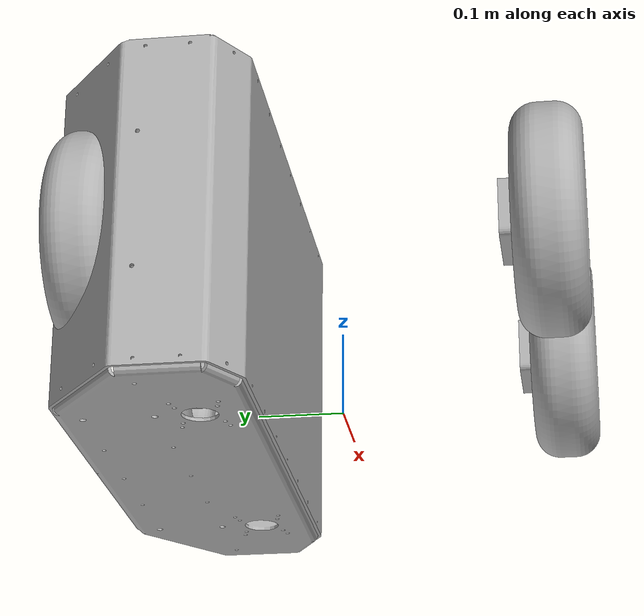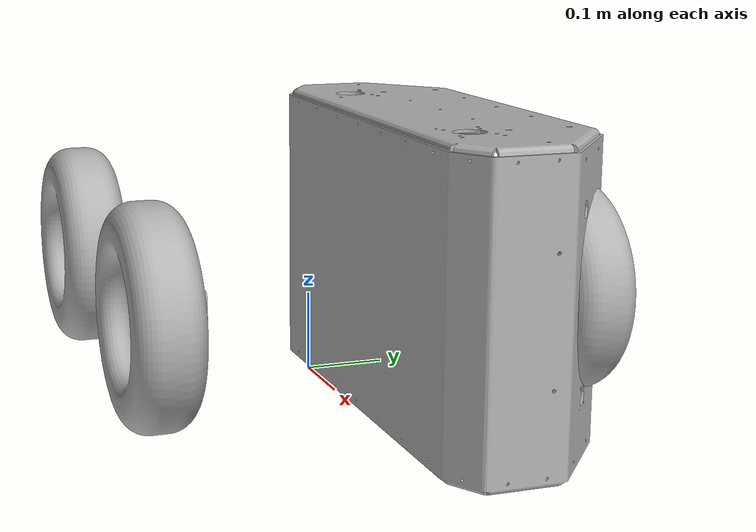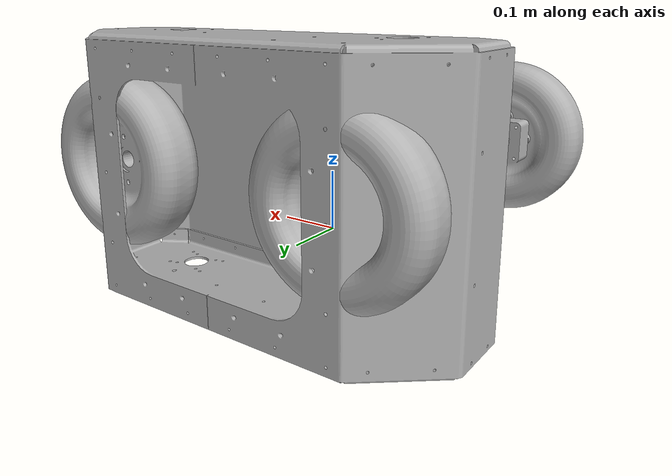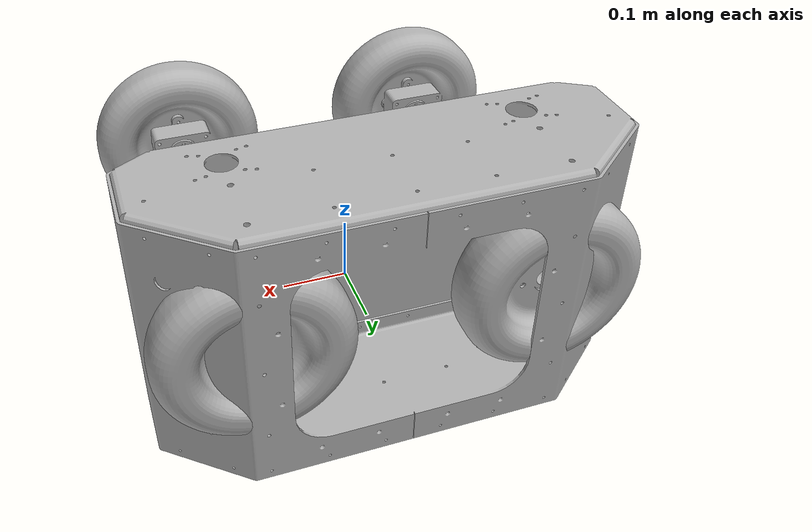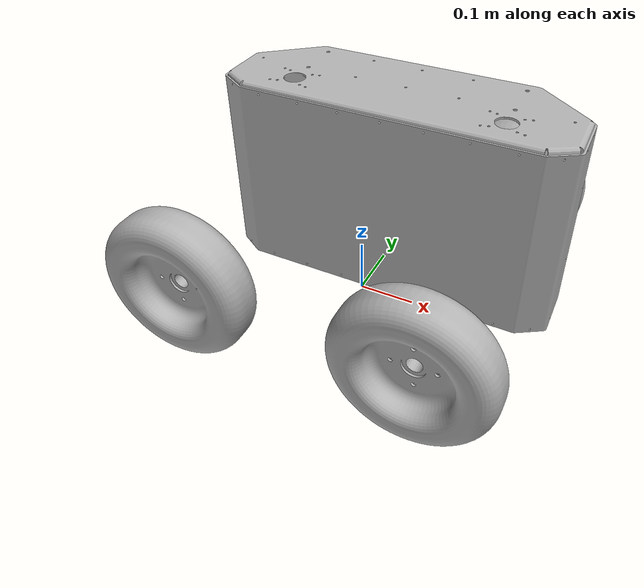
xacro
<?xml version="1.0"?>
<robot name="Diff_H80" xmlns:xacro="http://www.ros.org/wiki/xacro">

  <xacro:property name="PARKING_ROBOT_SACLE" value="0.001" />
  <xacro:property name="GROUND_CLEARANCE" value="0.131231" />

  <xacro:include filename="$(find Diff_H80_description)/urdf/materials.xacro" />
  <xacro:include filename="$(find Diff_H80_description)/urdf/Diff_H80.trans" />
  <xacro:include filename="$(find Diff_H80_description)/urdf/Diff_H80.gazebo" />

  <link name="dummy_link" />

  <link name="base_link">
    <inertial>
      <origin xyz="-0.011449016469047966 0.01315775461098758 0.15791582518187486" rpy="0 0 0" />
      <mass value="9.393259852945702" />
      <inertia ixx="0.371683" iyy="0.220355" izz="0.422433" ixy="-0.001416" iyz="0.008743" ixz="0.000944" />
    </inertial>
    <visual>
      <origin xyz="0 0 ${GROUND_CLEARANCE}" rpy="0 0 0" />
      <geometry>
        <mesh filename="package://Diff_H80_description/meshes/base_link.stl"
          scale="${PARKING_ROBOT_SACLE} ${PARKING_ROBOT_SACLE} ${PARKING_ROBOT_SACLE}" />
      </geometry>
      <material name="silver" />
    </visual>
    <collision>
      <origin xyz="0 0 ${GROUND_CLEARANCE}" rpy="0 0 0" />
      <geometry>
        <mesh filename="package://Diff_H80_description/meshes/base_link.stl"
          scale="${PARKING_ROBOT_SACLE} ${PARKING_ROBOT_SACLE} ${PARKING_ROBOT_SACLE}" />
      </geometry>
    </collision>
  </link>

  <link name="wheel_1">
    <inertial>
      <origin xyz="0.052673866816185244 -1.1762068571896656e-07 2.967117346264203e-07" rpy="0 0 0" />
      <mass value="2.9857823803068295" />
      <inertia ixx="0.028562" iyy="0.015662" izz="0.015726" ixy="-0.0" iyz="-0.0" ixz="0.0" />
    </inertial>
    <visual>
      <origin xyz="0.188674 0.197557 ${GROUND_CLEARANCE - 0.131231}" rpy="0 0 0" />
      <geometry>
        <mesh filename="package://Diff_H80_description/meshes/wheel_1.stl"
          scale="${PARKING_ROBOT_SACLE} ${PARKING_ROBOT_SACLE} ${PARKING_ROBOT_SACLE}" />
      </geometry>
      <material name="silver" />
    </visual>
    <collision>
      <origin xyz="0.188674 0.197557 ${GROUND_CLEARANCE - 0.131231}" rpy="0 0 0" />
      <geometry>
        <mesh filename="package://Diff_H80_description/meshes/wheel_1.stl"
          scale="${PARKING_ROBOT_SACLE} ${PARKING_ROBOT_SACLE} ${PARKING_ROBOT_SACLE}" />
      </geometry>
    </collision>
  </link>

  <link name="wheel_2">
    <inertial>
      <origin xyz="0.05267386681617087 -1.1762068591325558e-07 2.967117369023775e-07" rpy="0 0 0" />
      <mass value="2.9857823803068295" />
      <inertia ixx="0.028562" iyy="0.015662" izz="0.015726" ixy="-0.0" iyz="-0.0" ixz="0.0" />
    </inertial>
    <visual>
      <origin xyz="-0.188674 0.202443 ${GROUND_CLEARANCE - 0.131231}" rpy="0 0 0" />
      <geometry>
        <mesh filename="package://Diff_H80_description/meshes/wheel_2.stl"
          scale="${PARKING_ROBOT_SACLE} ${PARKING_ROBOT_SACLE} ${PARKING_ROBOT_SACLE}" />
      </geometry>
      <material name="silver" />
    </visual>
    <collision>
      <origin xyz="-0.188674 0.202443 ${GROUND_CLEARANCE -0.131231}" rpy="0 0 0" />
      <geometry>
        <mesh filename="package://Diff_H80_description/meshes/wheel_2.stl"
          scale="${PARKING_ROBOT_SACLE} ${PARKING_ROBOT_SACLE} ${PARKING_ROBOT_SACLE}" />
      </geometry>
    </collision>
  </link>

  <link name="wheel_3">
    <inertial>
      <origin xyz="-0.05267356462253964 -1.1762070392662416e-07 2.509659630389738e-07" rpy="0 0 0" />
      <mass value="2.9857823803068295" />
      <inertia ixx="0.028562" iyy="0.015662" izz="0.015726" ixy="0.0" iyz="0.0" ixz="0.0" />
    </inertial>
    <visual>
      <origin xyz="0.211326 -0.197557 ${GROUND_CLEARANCE -0.131231}" rpy="0 0 0" />
      <geometry>
        <mesh filename="package://Diff_H80_description/meshes/wheel_3.stl"
          scale="${PARKING_ROBOT_SACLE} ${PARKING_ROBOT_SACLE} ${PARKING_ROBOT_SACLE}" />
      </geometry>
      <material name="silver" />
    </visual>
    <collision>
      <origin xyz="0.211326 -0.197557 ${GROUND_CLEARANCE - 0.131231}" rpy="0 0 0" />
      <geometry>
        <mesh filename="package://Diff_H80_description/meshes/wheel_3.stl"
          scale="${PARKING_ROBOT_SACLE} ${PARKING_ROBOT_SACLE} ${PARKING_ROBOT_SACLE}" />
      </geometry>
    </collision>
  </link>

  <link name="wheel_4">
    <inertial>
      <origin xyz="-0.05267356462255357 -1.1762070406540204e-07 2.5096596523166426e-07" rpy="0 0 0" />
      <mass value="2.9857823803068295" />
      <inertia ixx="0.028562" iyy="0.015662" izz="0.015726" ixy="0.0" iyz="0.0" ixz="0.0" />
    </inertial>
    <visual>
      <origin xyz="-0.211326 -0.202443 ${GROUND_CLEARANCE -0.131231}" rpy="0 0 0" />
      <geometry>
        <mesh filename="package://Diff_H80_description/meshes/wheel_4.stl"
          scale="${PARKING_ROBOT_SACLE} ${PARKING_ROBOT_SACLE} ${PARKING_ROBOT_SACLE}" />
      </geometry>
      <material name="silver" />
    </visual>
    <collision>
      <origin xyz="-0.211326 -0.202443 ${GROUND_CLEARANCE -0.131231}" rpy="0 0 0" />
      <geometry>
        <mesh filename="package://Diff_H80_description/meshes/wheel_4.stl"
          scale="${PARKING_ROBOT_SACLE} ${PARKING_ROBOT_SACLE} ${PARKING_ROBOT_SACLE}" />
      </geometry>
    </collision>
  </link>

  <joint name="dummy_joint" type="fixed">
    <parent link="dummy_link" />
    <child link="base_link" />
  </joint>

  <joint name="rear_right" type="continuous">
    <origin xyz="-0.188674 -0.197557 0.131231" rpy="0 0 0" />
    <parent link="base_link" />
    <child link="wheel_1" />
    <axis xyz="-0.0 -1.0 -0.0" />
  </joint>

  <joint name="front_right" type="continuous">
    <origin xyz="0.188674 -0.202443 0.131231" rpy="0 0 0" />
    <parent link="base_link" />
    <child link="wheel_2" />
    <axis xyz="-0.0 -1.0 -0.0" />
  </joint>

  <joint name="rear_left" type="continuous">
    <origin xyz="-0.211326 0.197557 0.131231" rpy="0 0 0" />
    <parent link="base_link" />
    <child link="wheel_3" />
    <axis xyz="0.0 1.0 0.0" />
  </joint>

  <joint name="front_left" type="continuous">
    <origin xyz="0.211326 0.202443 0.131231" rpy="0 0 0" />
    <parent link="base_link" />
    <child link="wheel_4" />
    <axis xyz="0.0 1.0 0.0" />
  </joint>

</robot>

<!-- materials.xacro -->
<robot name="Diff_H80" xmlns:xacro="http://www.ros.org/wiki/xacro" >

<material name="silver">
  <color rgba="0.700 0.700 0.700 1.000"/>
</material>

</robot>

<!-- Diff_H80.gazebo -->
<robot name="Diff_H80" xmlns:xacro="http://www.ros.org/wiki/xacro" >

<xacro:property name="body_color" value="Gazebo/Silver" />

<gazebo>
  <plugin name="control" filename="libgazebo_ros_control.so"/>
</gazebo>
<gazebo reference="base_link">
  <material>${body_color}</material>
  <mu1>0.2</mu1>
  <mu2>0.2</mu2>
  <selfCollide>true</selfCollide>
  <gravity>true</gravity>
</gazebo>

<gazebo reference="wheel_1">
  <material>${body_color}</material>
  <mu1>0.2</mu1>
  <mu2>0.2</mu2>
  <selfCollide>true</selfCollide>
</gazebo>

<gazebo reference="wheel_2">
  <material>${body_color}</material>
  <mu1>0.2</mu1>
  <mu2>0.2</mu2>
  <selfCollide>true</selfCollide>
</gazebo>

<gazebo reference="wheel_3">
  <material>${body_color}</material>
  <mu1>0.2</mu1>
  <mu2>0.2</mu2>
  <selfCollide>true</selfCollide>
</gazebo>

<gazebo reference="wheel_4">
  <material>${body_color}</material>
  <mu1>0.2</mu1>
  <mu2>0.2</mu2>
  <selfCollide>true</selfCollide>
</gazebo>

</robot>
